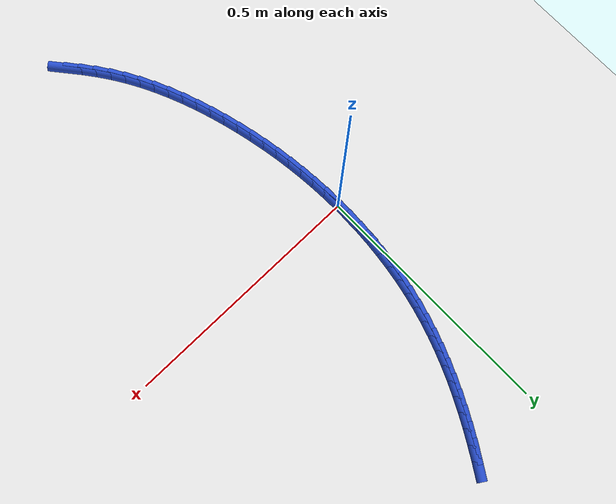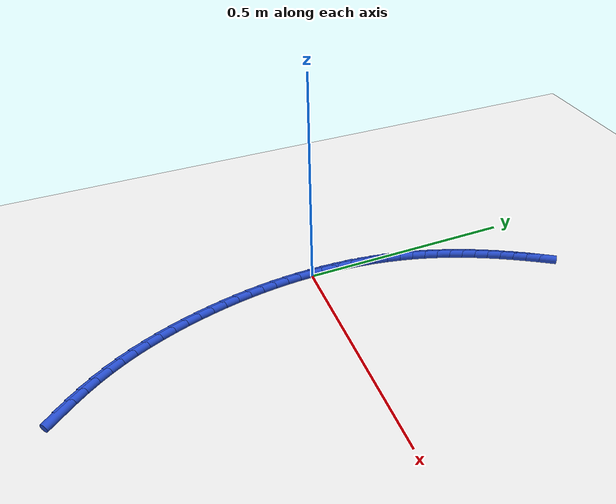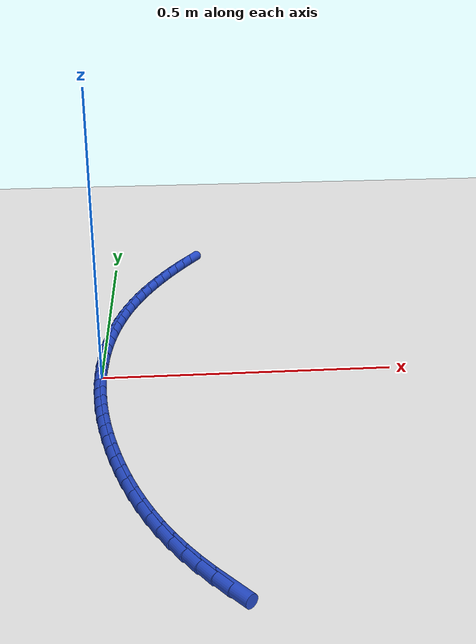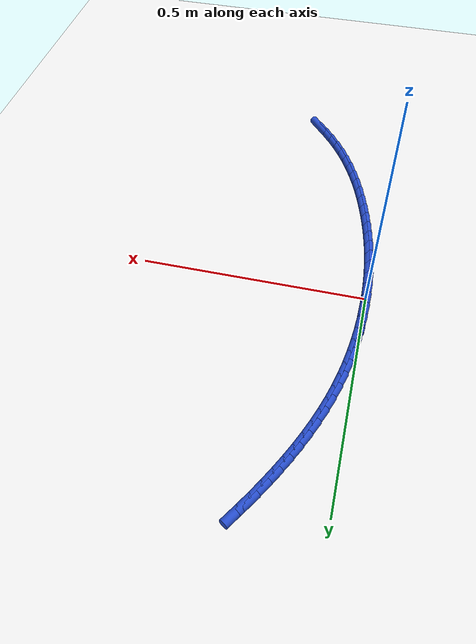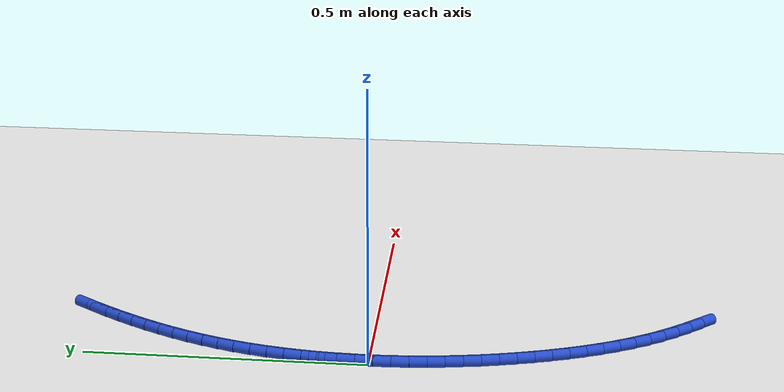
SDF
<sdf version="1.6">
 <world name="default">
  <model name="ground_plane">
   <static>1</static>
   <link name="link">
    <collision name="collision">
     <geometry><plane><normal>0 0 1</normal><size>100 100</size></plane></geometry>
     <surface><friction><ode><mu>100</mu><mu2>50</mu2></ode></friction></surface>
    </collision>
    <visual name="visual">
     <cast_shadows>0</cast_shadows>
     <geometry><plane><normal>0 0 1</normal><size>100 100</size></plane></geometry>
     <material>
      <script><uri>file://media/materials/scripts/gazebo.material</uri><name>Gazebo/WhiteGlow</name></script>
     </material>
    </visual>
   </link>
  </model>
  <model name="line">
   <link name="link_0">
    <pose>6.071532165918825e-18 -6.938893903907228e-18 0.01 0 1.57 1.5606146225665916</pose>
    <collision name="collision">
     <geometry><cylinder><radius>0.01</radius><length>0.08</length></cylinder></geometry>
    </collision>
    <visual name="visual">
     <material>
      <script><name>Gazebo/Blue</name><uri>file://media/materials/scripts/gazebo.material</uri></script>
     </material>
     <geometry><cylinder><radius>0.01</radius><length>0.08</length></cylinder></geometry>
    </visual>
   </link>
   <link name="link_1">
    <pose>0.0003144030365966961 0.030878148201406337 0.01 0 1.57 1.5298283075241172</pose>
    <collision name="collision">
     <geometry><cylinder><radius>0.01</radius><length>0.08</length></cylinder></geometry>
    </collision>
    <visual name="visual">
     <material>
      <script><name>Gazebo/Blue</name><uri>file://media/materials/scripts/gazebo.material</uri></script>
     </material>
     <geometry><cylinder><radius>0.01</radius><length>0.08</length></cylinder></geometry>
    </visual>
   </link>
   <link name="link_2">
    <pose>0.0015812782927270923 0.06178436319322704 0.01 0 1.57 1.4984571761689256</pose>
    <collision name="collision">
     <geometry><cylinder><radius>0.01</radius><length>0.08</length></cylinder></geometry>
    </collision>
    <visual name="visual">
     <material>
      <script><name>Gazebo/Blue</name><uri>file://media/materials/scripts/gazebo.material</uri></script>
     </material>
     <geometry><cylinder><radius>0.01</radius><length>0.08</length></cylinder></geometry>
    </visual>
   </link>
   <link name="link_3">
    <pose>0.003818093401102756 0.09265163231806146 0.01 0 1.57 1.466363432714938</pose>
    <collision name="collision">
     <geometry><cylinder><radius>0.01</radius><length>0.08</length></cylinder></geometry>
    </collision>
    <visual name="visual">
     <material>
      <script><name>Gazebo/Blue</name><uri>file://media/materials/scripts/gazebo.material</uri></script>
     </material>
     <geometry><cylinder><radius>0.01</radius><length>0.08</length></cylinder></geometry>
    </visual>
   </link>
   <link name="link_4">
    <pose>0.0070423159944352585 0.12341294291850904 0.01 0 1.57 1.4334088218116157</pose>
    <collision name="collision">
     <geometry><cylinder><radius>0.01</radius><length>0.08</length></cylinder></geometry>
    </collision>
    <visual name="visual">
     <material>
      <script><name>Gazebo/Blue</name><uri>file://media/materials/scripts/gazebo.material</uri></script>
     </material>
     <geometry><cylinder><radius>0.01</radius><length>0.08</length></cylinder></geometry>
    </visual>
   </link>
   <link name="link_5">
    <pose>0.011271413705436162 0.15400128233716914 0.01 0 1.57 1.3994542971568273</pose>
    <collision name="collision">
     <geometry><cylinder><radius>0.01</radius><length>0.08</length></cylinder></geometry>
    </collision>
    <visual name="visual">
     <material>
      <script><name>Gazebo/Blue</name><uri>file://media/materials/scripts/gazebo.material</uri></script>
     </material>
     <geometry><cylinder><radius>0.01</radius><length>0.08</length></cylinder></geometry>
    </visual>
   </link>
   <link name="link_6">
    <pose>0.016522854166817015 0.18434963791664105 0.01 0 1.57 1.3643600368888436</pose>
    <collision name="collision">
     <geometry><cylinder><radius>0.01</radius><length>0.08</length></cylinder></geometry>
    </collision>
    <visual name="visual">
     <material>
      <script><name>Gazebo/Blue</name><uri>file://media/materials/scripts/gazebo.material</uri></script>
     </material>
     <geometry><cylinder><radius>0.01</radius><length>0.08</length></cylinder></geometry>
    </visual>
   </link>
   <link name="link_7">
    <pose>0.0228141050112894 0.21439099699952424 0.01 0 1.57 1.3279858794346828</pose>
    <collision name="collision">
     <geometry><cylinder><radius>0.01</radius><length>0.08</length></cylinder></geometry>
    </collision>
    <visual name="visual">
     <material>
      <script><name>Gazebo/Blue</name><uri>file://media/materials/scripts/gazebo.material</uri></script>
     </material>
     <geometry><cylinder><radius>0.01</radius><length>0.08</length></cylinder></geometry>
    </visual>
   </link>
   <link name="link_8">
    <pose>0.030162633871564877 0.24405834692841805 0.01 0 1.57 1.290490744947438</pose>
    <collision name="collision">
     <geometry><cylinder><radius>0.01</radius><length>0.08</length></cylinder></geometry>
    </collision>
    <visual name="visual">
     <material>
      <script><name>Gazebo/Blue</name><uri>file://media/materials/scripts/gazebo.material</uri></script>
     </material>
     <geometry><cylinder><radius>0.01</radius><length>0.08</length></cylinder></geometry>
    </visual>
   </link>
   <link name="link_9">
    <pose>0.03857912483602734 0.27329392706162275 0.01 0 1.57 1.2537584870091076</pose>
    <collision name="collision">
     <geometry><cylinder><radius>0.01</radius><length>0.08</length></cylinder></geometry>
    </collision>
    <visual name="visual">
     <material>
      <script><name>Gazebo/Blue</name><uri>file://media/materials/scripts/gazebo.material</uri></script>
     </material>
     <geometry><cylinder><radius>0.01</radius><length>0.08</length></cylinder></geometry>
    </visual>
   </link>
   <link name="link_10">
    <pose>0.0480304554355792 0.3020997241310881 0.01 0 1.57 1.2186791028543185</pose>
    <collision name="collision">
     <geometry><cylinder><radius>0.01</radius><length>0.08</length></cylinder></geometry>
    </collision>
    <visual name="visual">
     <material>
      <script><name>Gazebo/Blue</name><uri>file://media/materials/scripts/gazebo.material</uri></script>
     </material>
     <geometry><cylinder><radius>0.01</radius><length>0.08</length></cylinder></geometry>
    </visual>
   </link>
   <link name="link_11">
    <pose>0.05846609784647454 0.3305014638769742 0.01 0 1.57 1.1853778377418578</pose>
    <collision name="collision">
     <geometry><cylinder><radius>0.01</radius><length>0.08</length></cylinder></geometry>
    </collision>
    <visual name="visual">
     <material>
      <script><name>Gazebo/Blue</name><uri>file://media/materials/scripts/gazebo.material</uri></script>
     </material>
     <geometry><cylinder><radius>0.01</radius><length>0.08</length></cylinder></geometry>
    </visual>
   </link>
   <link name="link_12">
    <pose>0.06983548001408091 0.3585249323655527 0.01 0 1.57 1.1539509115376119</pose>
    <collision name="collision">
     <geometry><cylinder><radius>0.01</radius><length>0.08</length></cylinder></geometry>
    </collision>
    <visual name="visual">
     <material>
      <script><name>Gazebo/Blue</name><uri>file://media/materials/scripts/gazebo.material</uri></script>
     </material>
     <geometry><cylinder><radius>0.01</radius><length>0.08</length></cylinder></geometry>
    </visual>
   </link>
   <link name="link_13">
    <pose>0.08208802988376587 0.3861959156630955 0.01 0 1.57 1.124469234404962</pose>
    <collision name="collision">
     <geometry><cylinder><radius>0.01</radius><length>0.08</length></cylinder></geometry>
    </collision>
    <visual name="visual">
     <material>
      <script><name>Gazebo/Blue</name><uri>file://media/materials/scripts/gazebo.material</uri></script>
     </material>
     <geometry><cylinder><radius>0.01</radius><length>0.08</length></cylinder></geometry>
    </visual>
   </link>
   <link name="link_14">
    <pose>0.09517317540089694 0.4135401998358744 0.01 0 1.57 1.0969808955151306</pose>
    <collision name="collision">
     <geometry><cylinder><radius>0.01</radius><length>0.08</length></cylinder></geometry>
    </collision>
    <visual name="visual">
     <material>
      <script><name>Gazebo/Blue</name><uri>file://media/materials/scripts/gazebo.material</uri></script>
     </material>
     <geometry><cylinder><radius>0.01</radius><length>0.08</length></cylinder></geometry>
    </visual>
   </link>
   <link name="link_15">
    <pose>0.10904034451084174 0.44058357095016143 0.01 0 1.57 1.0715140942981298</pose>
    <collision name="collision">
     <geometry><cylinder><radius>0.01</radius><length>0.08</length></cylinder></geometry>
    </collision>
    <visual name="visual">
     <material>
      <script><name>Gazebo/Blue</name><uri>file://media/materials/scripts/gazebo.material</uri></script>
     </material>
     <geometry><cylinder><radius>0.01</radius><length>0.08</length></cylinder></geometry>
    </visual>
   </link>
   <link name="link_16">
    <pose>0.12363896515896779 0.46735181507222845 0.01 0 1.57 1.0480802703301089</pose>
    <collision name="collision">
     <geometry><cylinder><radius>0.01</radius><length>0.08</length></cylinder></geometry>
    </collision>
    <visual name="visual">
     <material>
      <script><name>Gazebo/Blue</name><uri>file://media/materials/scripts/gazebo.material</uri></script>
     </material>
     <geometry><cylinder><radius>0.01</radius><length>0.08</length></cylinder></geometry>
    </visual>
   </link>
   <link name="link_17">
    <pose>0.1389184652906427 0.4938707182683474 0.01 0 1.57 1.0266772340957346</pose>
    <collision name="collision">
     <geometry><cylinder><radius>0.01</radius><length>0.08</length></cylinder></geometry>
    </collision>
    <visual name="visual">
     <material>
      <script><name>Gazebo/Blue</name><uri>file://media/materials/scripts/gazebo.material</uri></script>
     </material>
     <geometry><cylinder><radius>0.01</radius><length>0.08</length></cylinder></geometry>
    </visual>
   </link>
   <link name="link_18">
    <pose>0.154828272851234 0.5201660666047899 0.01 0 1.57 1.0072921513861022</pose>
    <collision name="collision">
     <geometry><cylinder><radius>0.01</radius><length>0.08</length></cylinder></geometry>
    </collision>
    <visual name="visual">
     <material>
      <script><name>Gazebo/Blue</name><uri>file://media/materials/scripts/gazebo.material</uri></script>
     </material>
     <geometry><cylinder><radius>0.01</radius><length>0.08</length></cylinder></geometry>
    </visual>
   </link>
   <link name="link_230">
    <pose>0.18832681155545594 -0.5702644223603855 0.01 0 1.57 -0.8836607212615271</pose>
    <collision name="collision">
     <geometry><cylinder><radius>0.01</radius><length>0.08</length></cylinder></geometry>
    </collision>
    <visual name="visual">
     <material>
      <script><name>Gazebo/Blue</name><uri>file://media/materials/scripts/gazebo.material</uri></script>
     </material>
     <geometry><cylinder><radius>0.01</radius><length>0.08</length></cylinder></geometry>
    </visual>
   </link>
   <link name="link_231">
    <pose>0.1695071822785458 -0.5473285321729173 0.01 0 1.57 -0.9230386506277166</pose>
    <collision name="collision">
     <geometry><cylinder><radius>0.01</radius><length>0.08</length></cylinder></geometry>
    </collision>
    <visual name="visual">
     <material>
      <script><name>Gazebo/Blue</name><uri>file://media/materials/scripts/gazebo.material</uri></script>
     </material>
     <geometry><cylinder><radius>0.01</radius><length>0.08</length></cylinder></geometry>
    </visual>
   </link>
   <link name="link_232">
    <pose>0.151586936481052 -0.5236455619932242 0.01 0 1.57 -0.9669662468678124</pose>
    <collision name="collision">
     <geometry><cylinder><radius>0.01</radius><length>0.08</length></cylinder></geometry>
    </collision>
    <visual name="visual">
     <material>
      <script><name>Gazebo/Blue</name><uri>file://media/materials/scripts/gazebo.material</uri></script>
     </material>
     <geometry><cylinder><radius>0.01</radius><length>0.08</length></cylinder></geometry>
    </visual>
   </link>
   <link name="link_233">
    <pose>0.13466332942409912 -0.49911057090049993 0.01 0 1.57 -1.0150606569532987</pose>
    <collision name="collision">
     <geometry><cylinder><radius>0.01</radius><length>0.08</length></cylinder></geometry>
    </collision>
    <visual name="visual">
     <material>
      <script><name>Gazebo/Blue</name><uri>file://media/materials/scripts/gazebo.material</uri></script>
     </material>
     <geometry><cylinder><radius>0.01</radius><length>0.08</length></cylinder></geometry>
    </visual>
   </link>
   <link name="link_234">
    <pose>0.11883291133222525 -0.47361977423643054 0.01 0 1.57 -1.0641821864670835</pose>
    <collision name="collision">
     <geometry><cylinder><radius>0.01</radius><length>0.08</length></cylinder></geometry>
    </collision>
    <visual name="visual">
     <material>
      <script><name>Gazebo/Blue</name><uri>file://media/materials/scripts/gazebo.material</uri></script>
     </material>
     <geometry><cylinder><radius>0.01</radius><length>0.08</length></cylinder></geometry>
    </visual>
   </link>
   <link name="link_235">
    <pose>0.1041436943273451 -0.44714899000247504 0.01 0 1.57 -1.1098904492208415</pose>
    <collision name="collision">
     <geometry><cylinder><radius>0.01</radius><length>0.08</length></cylinder></geometry>
    </collision>
    <visual name="visual">
     <material>
      <script><name>Gazebo/Blue</name><uri>file://media/materials/scripts/gazebo.material</uri></script>
     </material>
     <geometry><cylinder><radius>0.01</radius><length>0.08</length></cylinder></geometry>
    </visual>
   </link>
   <link name="link_236">
    <pose>0.09056463328165608 -0.4198036903689133 0.01 0 1.57 -1.1520594710538037</pose>
    <collision name="collision">
     <geometry><cylinder><radius>0.01</radius><length>0.08</length></cylinder></geometry>
    </collision>
    <visual name="visual">
     <material>
      <script><name>Gazebo/Blue</name><uri>file://media/materials/scripts/gazebo.material</uri></script>
     </material>
     <geometry><cylinder><radius>0.01</radius><length>0.08</length></cylinder></geometry>
    </visual>
   </link>
   <link name="link_237">
    <pose>0.07805741509919623 -0.39170126699948254 0.01 0 1.57 -1.1909851979238288</pose>
    <collision name="collision">
     <geometry><cylinder><radius>0.01</radius><length>0.08</length></cylinder></geometry>
    </collision>
    <visual name="visual">
     <material>
      <script><name>Gazebo/Blue</name><uri>file://media/materials/scripts/gazebo.material</uri></script>
     </material>
     <geometry><cylinder><radius>0.01</radius><length>0.08</length></cylinder></geometry>
    </visual>
   </link>
   <link name="link_238">
    <pose>0.06658372668400346 -0.3629591115579196 0.01 0 1.57 -1.2269584307224715</pose>
    <collision name="collision">
     <geometry><cylinder><radius>0.01</radius><length>0.08</length></cylinder></geometry>
    </collision>
    <visual name="visual">
     <material>
      <script><name>Gazebo/Blue</name><uri>file://media/materials/scripts/gazebo.material</uri></script>
     </material>
     <geometry><cylinder><radius>0.01</radius><length>0.08</length></cylinder></geometry>
    </visual>
   </link>
   <link name="link_239">
    <pose>0.05610525494011582 -0.33369461570796155 0.01 0 1.57 -1.2602575342773148</pose>
    <collision name="collision">
     <geometry><cylinder><radius>0.01</radius><length>0.08</length></cylinder></geometry>
    </collision>
    <visual name="visual">
     <material>
      <script><name>Gazebo/Blue</name><uri>file://media/materials/scripts/gazebo.material</uri></script>
     </material>
     <geometry><cylinder><radius>0.01</radius><length>0.08</length></cylinder></geometry>
    </visual>
   </link>
   <link name="link_240">
    <pose>0.0465836867715715 -0.30402517111334626 0.01 0 1.57 -1.291144382337663</pose>
    <collision name="collision">
     <geometry><cylinder><radius>0.01</radius><length>0.08</length></cylinder></geometry>
    </collision>
    <visual name="visual">
     <material>
      <script><name>Gazebo/Blue</name><uri>file://media/materials/scripts/gazebo.material</uri></script>
     </material>
     <geometry><cylinder><radius>0.01</radius><length>0.08</length></cylinder></geometry>
    </visual>
   </link>
   <link name="link_241">
    <pose>0.03798070908240797 -0.27406816943780915 0.01 0 1.57 -1.3198642228492263</pose>
    <collision name="collision">
     <geometry><cylinder><radius>0.01</radius><length>0.08</length></cylinder></geometry>
    </collision>
    <visual name="visual">
     <material>
      <script><name>Gazebo/Blue</name><uri>file://media/materials/scripts/gazebo.material</uri></script>
     </material>
     <geometry><cylinder><radius>0.01</radius><length>0.08</length></cylinder></geometry>
    </visual>
   </link>
   <link name="link_242">
    <pose>0.03025804061693067 -0.24394092413293453 0.01 0 1.57 -1.3472572382117864</pose>
    <collision name="collision">
     <geometry><cylinder><radius>0.01</radius><length>0.08</length></cylinder></geometry>
    </collision>
    <visual name="visual">
     <material>
      <script><name>Gazebo/Blue</name><uri>file://media/materials/scripts/gazebo.material</uri></script>
     </material>
     <geometry><cylinder><radius>0.01</radius><length>0.08</length></cylinder></geometry>
    </visual>
   </link>
   <link name="link_243">
    <pose>0.02338992962509383 -0.21372997128233945 0.01 0 1.57 -1.374967969496184</pose>
    <collision name="collision">
     <geometry><cylinder><radius>0.01</radius><length>0.08</length></cylinder></geometry>
    </collision>
    <visual name="visual">
     <material>
      <script><name>Gazebo/Blue</name><uri>file://media/materials/scripts/gazebo.material</uri></script>
     </material>
     <geometry><cylinder><radius>0.01</radius><length>0.08</length></cylinder></geometry>
    </visual>
   </link>
   <link name="link_244">
    <pose>0.017382159164416332 -0.18344438514446162 0.01 0 1.57 -1.4032055645396915</pose>
    <collision name="collision">
     <geometry><cylinder><radius>0.01</radius><length>0.08</length></cylinder></geometry>
    </collision>
    <visual name="visual">
     <material>
      <script><name>Gazebo/Blue</name><uri>file://media/materials/scripts/gazebo.material</uri></script>
     </material>
     <geometry><cylinder><radius>0.01</radius><length>0.08</length></cylinder></geometry>
    </visual>
   </link>
   <link name="link_245">
    <pose>0.012245395528564296 -0.15308124483922506 0.01 0 1.57 -1.4319264092746966</pose>
    <collision name="collision">
     <geometry><cylinder><radius>0.01</radius><length>0.08</length></cylinder></geometry>
    </collision>
    <visual name="visual">
     <material>
      <script><name>Gazebo/Blue</name><uri>file://media/materials/scripts/gazebo.material</uri></script>
     </material>
     <geometry><cylinder><radius>0.01</radius><length>0.08</length></cylinder></geometry>
    </visual>
   </link>
   <link name="link_246">
    <pose>0.007990305011203833 -0.12263762948655368 0.01 0 1.57 -1.4610820964036328</pose>
    <collision name="collision">
     <geometry><cylinder><radius>0.01</radius><length>0.08</length></cylinder></geometry>
    </collision>
    <visual name="visual">
     <material>
      <script><name>Gazebo/Blue</name><uri>file://media/materials/scripts/gazebo.material</uri></script>
     </material>
     <geometry><cylinder><radius>0.01</radius><length>0.08</length></cylinder></geometry>
    </visual>
   </link>
   <link name="link_247">
    <pose>0.0046275539060010576 -0.09211061820637158 0.01 0 1.57 -1.4906197291192433</pose>
    <collision name="collision">
     <geometry><cylinder><radius>0.01</radius><length>0.08</length></cylinder></geometry>
    </collision>
    <visual name="visual">
     <material>
      <script><name>Gazebo/Blue</name><uri>file://media/materials/scripts/gazebo.material</uri></script>
     </material>
     <geometry><cylinder><radius>0.01</radius><length>0.08</length></cylinder></geometry>
    </visual>
   </link>
   <link name="link_248">
    <pose>0.002167808506622085 -0.061497290118602575 0.01 0 1.57 -1.5204823379254409</pose>
    <collision name="collision">
     <geometry><cylinder><radius>0.01</radius><length>0.08</length></cylinder></geometry>
    </collision>
    <visual name="visual">
     <material>
      <script><name>Gazebo/Blue</name><uri>file://media/materials/scripts/gazebo.material</uri></script>
     </material>
     <geometry><cylinder><radius>0.01</radius><length>0.08</length></cylinder></geometry>
    </visual>
   </link>
   <link name="link_249">
    <pose>0.0006217351067330274 -0.03079472434317069 0.01 0 1.57 -1.5506094063755878</pose>
    <collision name="collision">
     <geometry><cylinder><radius>0.01</radius><length>0.08</length></cylinder></geometry>
    </collision>
    <visual name="visual">
     <material>
      <script><name>Gazebo/Blue</name><uri>file://media/materials/scripts/gazebo.material</uri></script>
     </material>
     <geometry><cylinder><radius>0.01</radius><length>0.08</length></cylinder></geometry>
    </visual>
   </link>
   <link name="link_250">
    <pose>2.168404344971009e-18 1.734723475976807e-16 0.01 0 1.57 1.5606551571419434</pose>
    <collision name="collision">
     <geometry><cylinder><radius>0.01</radius><length>0.08</length></cylinder></geometry>
    </collision>
    <visual name="visual">
     <material>
      <script><name>Gazebo/Blue</name><uri>file://media/materials/scripts/gazebo.material</uri></script>
     </material>
     <geometry><cylinder><radius>0.01</radius><length>0.08</length></cylinder></geometry>
    </visual>
   </link>
   <link name="link_251">
    <pose>0.0003132694800891218 0.030889803790986003 0.01 0 1.57 1.5301916943127327</pose>
    <collision name="collision">
     <geometry><cylinder><radius>0.01</radius><length>0.08</length></cylinder></geometry>
    </collision>
    <visual name="visual">
     <material>
      <script><name>Gazebo/Blue</name><uri>file://media/materials/scripts/gazebo.material</uri></script>
     </material>
     <geometry><cylinder><radius>0.01</radius><length>0.08</length></cylinder></geometry>
    </visual>
   </link>
   <link name="link_252">
    <pose>0.0015722098406665023 0.061877607909862894 0.01 0 1.57 1.5453934113845476</pose>
    <collision name="collision">
     <geometry><cylinder><radius>0.01</radius><length>0.08</length></cylinder></geometry>
    </collision>
    <visual name="visual">
     <material>
      <script><name>Gazebo/Blue</name><uri>file://media/materials/scripts/gazebo.material</uri></script>
     </material>
     <geometry><cylinder><radius>0.01</radius><length>0.08</length></cylinder></geometry>
    </visual>
   </link>
  </model>
 </world>
</sdf>
